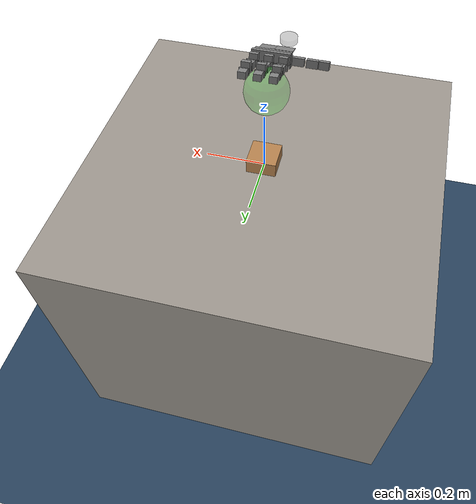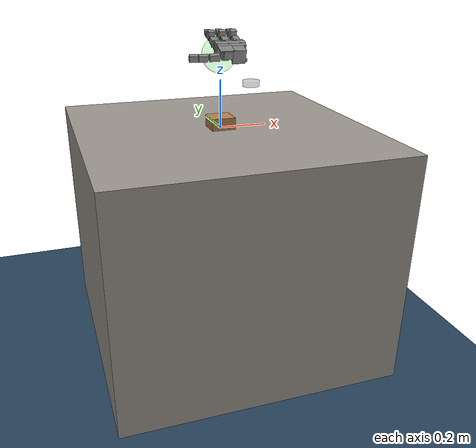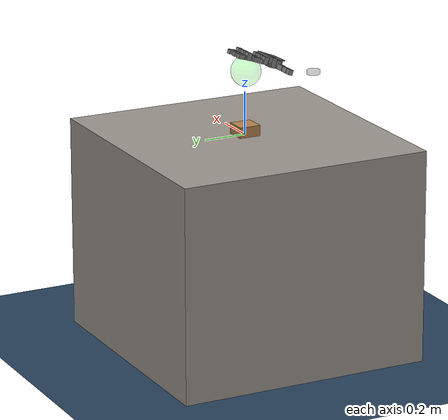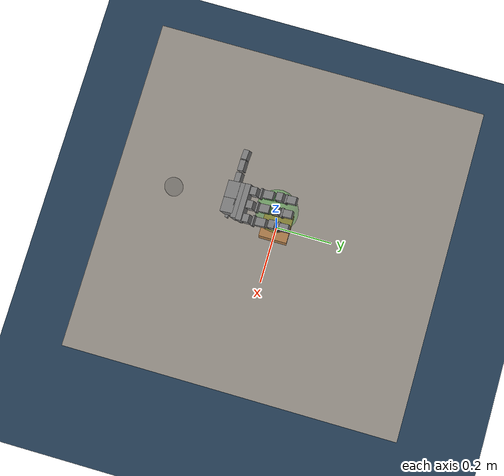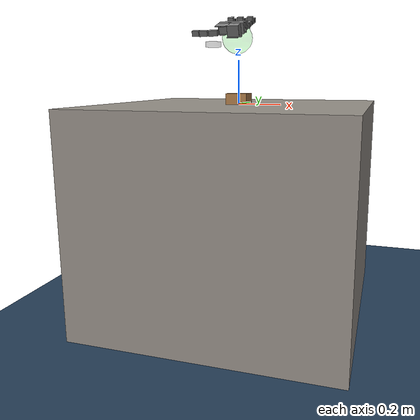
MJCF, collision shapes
<mujoco model='Relocate-Leap'>

    <!-- ======= COMPILER & OPTIONS ======= -->
    <compiler angle="radian" meshdir='.' />
    <option timestep="0.01" integrator="Euler" iterations="5" ls_iterations="8">
      <flag eulerdamp="enable"/>
    </option>

    <custom>
      <numeric data="30" name="max_contact_points"/>
      <numeric data="12" name="max_geom_pairs"/>
    </custom>

    <!-- Bring in Leap Hand assets/defaults and contacts -->
    <include file="leap_rh_assets_defaults.xml"/>

    <!-- ======= VISUAL SETTINGS ======= -->
    <visual>
        <global offwidth="3024" offheight="1680" />
        <quality shadowsize="4096" offsamples="8" />
        <map force="0.1" fogend="5" />
    </visual>

    <!-- ======= DEFAULTS ======= -->
    <default class="main">
        <mesh scale="0.001 0.001 0.001" />
        <joint limited="true" margin="0.01" armature="0.001" damping="0.05" frictionloss="0.001" />
        <geom friction="1 0.5 0.01" margin="0.0005" />
        <site size="0.005 0 0" rgba="0.4 0.9 0.4 1" />
        <tendon limited="true" />
        <general ctrllimited="true" ctrlrange="-1 1" user="0 1 0.03 0.0939711 0.513477 0.0358776 1.23598 8.40409 0.485031 6.04244 1.02187 0.175297 0.121642 0 0 0" />
    </default>

    <!-- ======= ASSETS ======= -->
    <asset>
        <!-- Textures -->
        <texture type="cube" name="texgeom" builtin="flat" mark="cross" rgb1="0.3 0.6 0.5" rgb2="0.3 0.6 0.5" width="127" height="762" />
        <texture type="cube" name="wood" file="resources/textures/wood.png" />
        <texture type="2d" name="wood2d" file="resources/textures/wood.png" />
        <texture type="cube" name="square" file="resources/textures/square.png" />
        <texture type="cube" name="foil" file="resources/textures/silverRaw.png" />
        <texture type="cube" name="woodb" file="resources/textures/woodb.png" />
        <texture type="2d" name="groundplane" builtin="checker" rgb1="0.2 0.3 0.4" rgb2="0.1 0.2 0.3" width="100" height="100" />
        <texture type="2d" name="marble2d" file="resources/textures/marble.png" />
        <texture type="cube" name="marblecube" file="resources/textures/marble.png" />

        <!-- Materials -->
        <material name="MatColl" specular="1" shininess="0.3" reflectance="0.5" rgba="0.4 0.5 0.6 1" />
        <material name="MatViz" specular="0.75" shininess="0.1" reflectance="0.5" rgba="0.9 0.7 0.5 1" />
        <material name="MatGnd" specular="0.3" shininess="0.3" reflectance="0.3" rgba="0.5 0.55 0.5 1" />
        <material name="object" texture="texgeom" />
        <material name="groundplane" texture="groundplane" texrepeat="10 10" />
        <material name="table2d" texture="marble2d" reflectance="0.3" rgba="0.8 0.8 0.8 1" />
        <material name="tablecube" texture="marblecube" rgba="0.8 0.8 0.8 1" />
        <material name="MatFoil" texture="foil" specular="1" shininess="0.3" rgba="0.9 0.9 0.9 1" />
        <material name="MatPlane" specular="0.3" shininess="0.3" rgba="0.3 0.3 0.2 1" />
        <material name="MatWood" texture="wood" texrepeat="3 3" specular="0.4" shininess="0.1" />
        <material name="MatSquare" texture="square" specular="1" shininess="0.6" rgba="0.8 0.8 0.8 1" />
        <material name="MatWoodR" texture="wood" specular="1" shininess="0.3" rgba="1 0.5 0.5 1" />
        <material name="MatWoodG" texture="wood" specular="1" shininess="0.3" rgba="0.2 1 0.2 1" />
        <material name="MatWoodB" texture="woodb" specular="1" shininess="0.3" />
    </asset>

    <!-- ======= WORLD ======= -->
    <worldbody>
        <!-- Lighting -->
        <light directional='false' diffuse='.7 .7 .7' specular='0.03 0.03 0.03' pos='-1 -1.0 4.0' dir='1 1.0 -4'/>

        <!-- Ground -->
        <geom name='ground' size="1.5 1.5 0.25" pos="0 0 -1" type="plane" contype="1" conaffinity="0" material="groundplane" />

        <!-- Cameras -->
        <camera name="fixed" pos="0 -0.7 0.7" quat="0.92388 0.382683 0 0" />
        <camera name="vil_camera" pos="0 -1.2 1.2" quat="0.92388 0.382683 0 0" />
        <camera name="hand_close" pos="0.1 -0.4 0.35" quat="0.92388 0.382683 0 0" />

        <!-- ======= TABLE ======= -->
        <body name="table">
            <geom size="0.6 0.6 0.5" pos="0 0 -0.5" type="box" material="tablecube" />
        </body>

        <!-- ======= MOCAP ======= -->
        <body name="vive_tracker" pos="0 -0.35 0.25" mocap="true">
            <inertial pos="0 0 0" mass="0.064" diaginertia="1.70667e-05 1.70667e-05 1.70667e-05" />
            <geom size="0.03 0.01" type="cylinder" contype="0" conaffinity="0" group="3" rgba="0.3 0.3 0.3 0.3" />
        </body>

        <!-- ======= LEAP HAND BASE (floating) ======= -->
        <body name="hand_base" pos="0 -0.2 0.3" euler="3.14 0 -1.57">
            <joint name="H_Tx" pos="0 0 0" axis="1 0 0" type="slide" range="-0.6 0.6" damping="50" armature="0.1"/>
            <joint name="H_Ty" pos="0 0 0" axis="0 1 0" type="slide" range="-0.6 0.6" damping="50" armature="0.1"/>
            <joint name="H_Tz" pos="0 0 0" axis="0 0 1" type="slide" range="-0.3 0.4" damping="50" armature="0.1"/>
            <joint name="H_Rx" pos="0 0 0" axis="1 0 0" range="-1.57 1.57" damping="50" armature="0.1"/>
            <joint name="H_Ry" pos="0 0 0" axis="0 1 0" range="-1.57 1.57" damping="50" armature="0.1"/>
            <joint name="H_Rz" pos="0 0 0" axis="0 0 1" range="-1.57 1.57" damping="50" armature="0.1"/>
            <!-- include the hand kinematic subtree -->
            <include file="leap_rh_body_include.xml"/>
        </body>

        <!-- ======= DESTINATION ======= -->
        <site name="target" pos="-0.007 0.0 0.3" size="0.07" rgba="0 1 0 0.125" />

        <!-- ======= OBJECT ======= -->
        <body name="Object" pos="-0.00 0.0 0.00" user="1001 0 2003 27 0 0 0.06 0 0">
            <inertial pos="0 0 0" mass="0.5" diaginertia="0.001 0.001 0.001" />
            <freejoint/>
            <geom name="object" type="box" size="0.05 0.05 0.05" condim="6" material="MatWoodB" friction="0.7 0.3 0.01" solref="0.02 1" solimp="0.9 0.95 0.001"/>
        </body>
    </worldbody>

    <!-- Bring in Leap Hand actuators -->
    <include file="leap_rh_actuators_include_relocate.xml"/>

</mujoco>

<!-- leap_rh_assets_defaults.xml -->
<mujocoinclude>
  <asset>
    <material name="black" rgba="0.2 0.2 0.2 1"/>
    <material name="gray" rgba="0.5 0.5 0.5 1"/>
    <mesh name="leap_mount" file="meshes/leap_mount.obj" scale="1 1 1"/>
    <!-- Files are resolved relative to meshdir set by the scene -->
    <mesh name="palm" file="../../../../external_deps/mujoco_menagerie/leap_hand/assets/palm_right.obj" scale="1 1 1"/>
    <mesh name="base" file="../../../../external_deps/mujoco_menagerie/leap_hand/assets/base.obj" scale="1 1 1"/>
    <mesh name="proximal" file="../../../../external_deps/mujoco_menagerie/leap_hand/assets/proximal.obj" scale="1 1 1"/>
    <mesh name="medial" file="../../../../external_deps/mujoco_menagerie/leap_hand/assets/medial.obj" scale="1 1 1"/>
    <mesh name="distal" file="../../../../external_deps/mujoco_menagerie/leap_hand/assets/distal.obj" scale="1 1 1"/>
    <mesh name="tip" file="../../../../external_deps/mujoco_menagerie/leap_hand/assets/tip.obj" scale="1 1 1"/>
    <mesh name="thumb_base" file="../../../../external_deps/mujoco_menagerie/leap_hand/assets/thumb_base.obj" scale="1 1 1"/>
    <mesh name="thumb_proximal" file="../../../../external_deps/mujoco_menagerie/leap_hand/assets/thumb_proximal.obj" scale="1 1 1"/>
    <mesh name="thumb_distal" file="../../../../external_deps/mujoco_menagerie/leap_hand/assets/thumb_distal.obj" scale="1 1 1"/>
    <mesh name="thumb_tip" file="../../../../external_deps/mujoco_menagerie/leap_hand/assets/thumb_tip.obj" scale="1 1 1"/>
  </asset>

  <default>
    <default class="leap_rh">
      <geom group="3" friction="0.2" solref="0.02 1.5" solimp="0.9 0.99 0.001"/>
      <default class="visual">
        <geom group="0" type="mesh" contype="0" conaffinity="0" density="0" material="black"/>
      </default>
      <default class="tip">
        <geom size="0.01 0.012 0.016" pos="-0.0012969 -0.0335524 0.0145207" quat="0.703552 0.709596 -0.0292107 -0.0252203" type="box" friction="0.7 0.05 0.0002" rgba=".5 .5 .5 .3"/>
      </default>
      <default class="thumb_tip">
        <geom size="0.01 0.012 0.016" pos="-0.00127744 -0.0455619 -0.0144774" quat="0.708101 0.705072 -0.0294902 -0.024426" type="box" friction="0.7 0.05 0.0002" rgba=".5 .5 .5 .3"/>
      </default>
      <position kp="3.0" inheritrange="1"/>
      <joint axis="0 0 -1" damping="0.2" armature="0.00149376" actuatorfrcrange="-0.2196 0.2196" frictionloss="0.02"/>
      <default class="mcp">
        <joint range="-0.314 2.23"/>
      </default>
      <default class="rot">
        <joint range="-1.047 1.047"/>
      </default>
      <default class="pip">
        <joint range="-0.506 1.885"/>
      </default>
      <default class="dip">
        <joint range="-0.366 2.042"/>
      </default>
      <default class="thumb_cmc">
        <joint range="-0.349 2.094"/>
      </default>
      <default class="thumb_axl">
        <joint range="-0.349 2.094"/>
      </default>
      <default class="thumb_mcp">
        <joint range="-0.47 2.443"/>
      </default>
      <default class="thumb_ipl">
        <joint range="-1.34 1.88"/>
      </default>
    </default>
  </default>

  <contact>
    <!-- filter the palm from all other finger bodies except the tips -->
    <exclude body1="palm" body2="if_bs"/>
    <exclude body1="palm" body2="mf_bs"/>
    <exclude body1="palm" body2="rf_bs"/>
    <exclude body1="palm" body2="th_mp"/>

    <exclude body1="palm" body2="if_px"/>
    <exclude body1="palm" body2="mf_px"/>
    <exclude body1="palm" body2="rf_px"/>
    <exclude body1="palm" body2="th_bs"/>

    <exclude body1="palm" body2="if_md"/>
    <exclude body1="palm" body2="mf_md"/>
    <exclude body1="palm" body2="rf_md"/>
    <exclude body1="palm" body2="th_px"/>

    <!-- filter the mount from all finger bodies except the tips -->
    <exclude body1="leap_mount" body2="if_bs"/>
    <exclude body1="leap_mount" body2="mf_bs"/>
    <exclude body1="leap_mount" body2="rf_bs"/>
    <exclude body1="leap_mount" body2="th_mp"/>

    <exclude body1="leap_mount" body2="if_px"/>
    <exclude body1="leap_mount" body2="mf_px"/>
    <exclude body1="leap_mount" body2="rf_px"/>
    <exclude body1="leap_mount" body2="th_bs"/>

    <exclude body1="leap_mount" body2="if_md"/>
    <exclude body1="leap_mount" body2="mf_md"/>
    <exclude body1="leap_mount" body2="rf_md"/>
    <exclude body1="leap_mount" body2="th_px"/>

    <!-- none of the base fingertip geoms can touch each other -->
    <exclude body1="if_bs" body2="mf_bs"/>
    <exclude body1="if_bs" body2="rf_bs"/>
    <exclude body1="mf_bs" body2="rf_bs"/>

    <exclude body1="th_mp" body2="if_bs"/>
    <exclude body1="th_mp" body2="mf_bs"/>
    <exclude body1="th_mp" body2="rf_bs"/>
  </contact>
</mujocoinclude>

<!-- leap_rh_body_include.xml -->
<mujocoinclude>
  <body name="leap_mount" pos="0 0 0" quat="1 0 0 0" childclass="leap_rh">
    <geom name="leap_mount_visual" pos="0 0 0" quat="1 0 0 0" class="visual" mesh="leap_mount"/>
    <geom name="leap_mount_collision_0" size="0.002 0.025 0.005" pos="0.0405 0.02 0.009" quat="0.57346234 0 0.81923192 0" type="box"/>
    <geom name="leap_mount_collision_1" size="0.005 0.005 0.005" pos="0.05 0.053 0.002" quat="0.4987168 0.64994038 -0.34910175 0.45495826" type="box"/>
    <site name="grasp_site" pos="0.11 0.0 0.03" group="4"/>
    <site name="palm_site" pos="0.11 0.0 0.0" group="4"/>
    <body name="palm" pos="0.124 -0.0305 -0.06045" quat="0 1 0 -0.175">
      <inertial pos="-0.049542 -0.042914 -0.010227" quat="0.565586 0.427629 -0.574956 0.408254" mass="0.237" diaginertia="0.000407345 0.000304759 0.000180736"/>
      <geom name="palm_visual" pos="-0.02 0.02575 -0.0347" quat="1 0 0 0" class="visual" mesh="palm"/>
      <geom name="palm_collision_1" size="0.011 0.013 0.017" pos="-0.009 0.008 -0.011" type="box"/>
      <geom name="palm_collision_2" size="0.011 0.013 0.017" pos="-0.009 -0.037 -0.011" type="box"/>
      <geom name="palm_collision_3" size="0.011 0.013 0.017" pos="-0.009 -0.082 -0.011" type="box"/>
      <geom name="palm_collision_4" size="0.012 0.058 0.023" pos="-0.048 -0.033 -0.0115" type="box"/>
      <geom name="palm_collision_5" size="0.01 0.06 0.015" pos="-0.03 -0.035 -0.003" type="box"/>
      <geom name="palm_collision_6" size="0.005 0.06 0.01" pos="-0.032 -0.035 -0.024" quat="0.923956 0 0.382499 0" type="box"/>
      <geom name="palm_collision_7" size="0.012 0.058 0.023" pos="-0.048 -0.033 -0.0115" type="box"/>
      <geom name="palm_collision_8" size="0.022 0.026 0.023" pos="-0.078 -0.053 -0.0115" type="box"/>
      <geom name="palm_collision_9" size="0.002 0.018 0.017" pos="-0.098 -0.009 -0.006" type="box"/>
      <geom name="palm_collision_10" size="0.022 0.028 0.002" pos="-0.078 -0.003 0.01" type="box"/>
      <!-- Index finger -->
      <body name="if_bs" pos="-0.007 0.023 -0.0187" quat="0.5 0.5 0.5 -0.5">
        <inertial pos="-0.022516 0.033882 0.016359" quat="0.388092 0.677951 -0.247713 0.573067" mass="0.044" diaginertia="1.74972e-05 1.61504e-05 7.21342e-06"/>
        <joint name="if_mcp" class="mcp"/>
        <geom name="if_bs_visual" pos="0.0084 0.0077 0.01465" quat="1 0 0 0" class="visual" mesh="base"/>
        <geom name="if_bs_collision_1" size="0.01 0.003 0.017" pos="0 0.018 0.0147" type="box"/>
        <body name="if_px" pos="-0.0122 0.0381 0.0145" quat="0.500003 -0.5 -0.499997 0.5">
          <inertial pos="0.0075 -0.0002 -0.011" quat="0 0.707107 0 0.707107" mass="0.032" diaginertia="4.8853e-06 4.3733e-06 3.0933e-06"/>
          <joint name="if_rot" class="rot"/>
          <geom name="if_px_visual" pos="0.0096 0.0002 0.0007" quat="0.500003 -0.5 -0.5 -0.499997" class="visual" mesh="proximal"/>
          <geom name="if_px_collision" size="0.017 0.013 0.011" pos="0.0075 -0.0002 -0.011" type="box"/>
          <body name="if_md" pos="0.015 0.0143 -0.013" quat="0.500003 0.5 -0.5 0.499997">
            <inertial pos="0.0054215 -0.029148 0.015" quat="0.687228 0.687228 0.166487 0.166487" mass="0.037" diaginertia="8.28004e-06 8.1598e-06 5.39516e-06"/>
            <joint name="if_pip" class="pip"/>
            <geom name="if_md_visual" pos="0.0211 -0.0084 0.0097" quat="2.67949e-08 -1 0 0" class="visual" mesh="medial"/>
            <geom name="if_md_collision_1" size="0.008 0.003 0.013" pos="0 -0.02 0.015" type="box"/>
            <geom name="if_md_collision_5" size="0.017 0.011 0.013" pos="0.0075 -0.035 0.015" type="box"/>
            <body name="if_ds" pos="0 -0.0361 0.0002">
              <inertial pos="-0.0008794 -0.027019 0.014594" quat="0.702905 0.710643 -0.0212937 -0.0214203" mass="0.016" diaginertia="3.71863e-06 3.02396e-06 1.6518e-06"/>
              <joint name="if_dip" class="dip"/>
              <geom name="if_ds_visual" pos="0.0132 -0.0061 0.0144" quat="2.67949e-08 1 0 0" class="visual" mesh="distal"/>
              <geom name="if_ds_collision_1" size="0.01 0.003 0.015" pos="0 -0.017 0.015" type="box"/>
              <geom name="if_tip" class="tip"/>
              <geom type="mesh" mesh="tip" class="visual" material="gray"/>
              <site name="if_tip" pos="0 -0.05 0.015" group="4"/>
            </body>
          </body>
        </body>
      </body>
      <!-- Middle finger -->
      <body name="mf_bs" pos="-0.0071 -0.0224 -0.0187" quat="0.500003 0.5 0.5 -0.499997">
        <inertial pos="-0.022516 0.033882 0.016359" quat="0.388092 0.677951 -0.247713 0.573067" mass="0.044" diaginertia="1.74972e-05 1.61504e-05 7.21342e-06"/>
        <joint name="mf_mcp" class="mcp"/>
        <geom name="mf_bs_visual" pos="0.0084 0.0077 0.01465" quat="1 0 0 0" class="visual" mesh="base"/>
        <geom name="mf_bs_collision_1" size="0.01 0.003 0.017" pos="0 0.018 0.0147" type="box"/>
        <body name="mf_px" pos="-0.0122 0.0381 0.0145" quat="0.500003 -0.5 -0.499997 0.5">
          <inertial pos="0.0075 -0.0002 -0.011" quat="0 0.707107 0 0.707107" mass="0.032" diaginertia="4.8853e-06 4.3733e-06 3.0933e-06"/>
          <joint name="mf_rot" class="rot"/>
          <geom name="mf_px_visual" pos="0.0096 0.0003 0.0007" quat="0.500003 -0.5 -0.5 -0.499997" class="visual" mesh="proximal"/>
          <geom name="mf_px_collision" size="0.017 0.013 0.011" pos="0.0075 -0.0002 -0.011" type="box"/>
          <body name="mf_md" pos="0.015 0.0143 -0.013" quat="0.500003 0.5 -0.5 0.499997">
            <inertial pos="0.0054215 -0.029148 0.015" quat="0.687228 0.687228 0.166487 0.166487" mass="0.037" diaginertia="8.28004e-06 8.1598e-06 5.39516e-06"/>
            <joint name="mf_pip" class="pip"/>
            <geom name="mf_md_visual" pos="0.0211 -0.0084 0.0097" quat="1.32679e-06 -1 0 0" class="visual" mesh="medial"/>
            <geom name="mf_md_collision_1" size="0.008 0.003 0.013" pos="0 -0.02 0.015" type="box"/>
            <geom name="mf_md_collision_5" size="0.017 0.011 0.013" pos="0.0075 -0.035 0.015" type="box"/>
            <body name="mf_ds" pos="0 -0.0361 0.0002">
              <inertial pos="-0.0008794 -0.027019 0.014594" quat="0.702905 0.710643 -0.0212937 -0.0214203" mass="0.016" diaginertia="3.71863e-06 3.02396e-06 1.6518e-06"/>
              <joint name="mf_dip" class="dip"/>
              <geom name="mf_ds_visual" pos="0.0132 -0.0061 0.0145" quat="1.32679e-06 1 0 0" class="visual" mesh="distal"/>
              <geom name="mf_ds_collision_1" size="0.01 0.003 0.015" pos="0 -0.017 0.015" type="box"/>
              <geom name="mf_tip" class="tip"/>
              <geom type="mesh" mesh="tip" class="visual" material="gray"/>
              <site name="mf_tip" pos="0 -0.05 0.015" group="4"/>
            </body>
          </body>
        </body>
      </body>
      <!-- Ring finger -->
      <body name="rf_bs" pos="-0.00709 -0.0678 -0.0187" quat="0.500003 0.5 0.5 -0.499997">
        <inertial pos="-0.022516 0.033882 0.016359" quat="0.388092 0.677951 -0.247713 0.573067" mass="0.044" diaginertia="1.74972e-05 1.61504e-05 7.21342e-06"/>
        <joint name="rf_mcp" class="mcp"/>
        <geom name="rf_bs_visual" pos="0.0084 0.0077 0.01465" quat="1 0 0 0" class="visual" mesh="base"/>
        <geom name="rf_bs_collision_1" size="0.01 0.003 0.017" pos="0 0.018 0.0147" type="box"/>
        <body name="rf_px" pos="-0.0122 0.0381 0.0145" quat="0.500003 -0.5 -0.499997 0.5">
          <inertial pos="0.0075 -0.0002 -0.011" quat="0 0.707107 0 0.707107" mass="0.032" diaginertia="4.8853e-06 4.3733e-06 3.0933e-06"/>
          <joint name="rf_rot" class="rot"/>
          <geom name="rf_px_visual" pos="0.0096 0.0003 0.0007" quat="0.500003 -0.5 -0.5 -0.499997" class="visual" mesh="proximal"/>
          <geom name="rf_px_collision" size="0.017 0.013 0.011" pos="0.0075 -0.0002 -0.011" type="box"/>
          <body name="rf_md" pos="0.015 0.0143 -0.013" quat="0.500003 0.5 -0.5 0.499997">
            <inertial pos="0.0054215 -0.029148 0.015" quat="0.687228 0.687228 0.166487 0.166487" mass="0.037" diaginertia="8.28004e-06 8.1598e-06 5.39516e-06"/>
            <joint name="rf_pip" class="pip"/>
            <geom name="rf_md_visual" pos="0.0211 -0.0084 0.0097" quat="0 -1 0 0" class="visual" mesh="medial"/>
            <geom name="rf_md_collision_1" size="0.008 0.003 0.013" pos="0 -0.02 0.015" type="box"/>
            <geom name="rf_md_collision_5" size="0.017 0.011 0.013" pos="0.0075 -0.035 0.015" type="box"/>
            <body name="rf_ds" pos="0 -0.03609 0.0002">
              <inertial pos="-0.0008794 -0.027019 0.014594" quat="0.702905 0.710643 -0.0212937 -0.0214203" mass="0.016" diaginertia="3.71863e-06 3.02396e-06 1.6518e-06"/>
              <joint name="rf_dip" class="dip"/>
              <geom name="rf_ds_visual" pos="0.0132 -0.0061 0.0145" quat="0 1 0 0" class="visual" mesh="distal"/>
              <geom name="rf_ds_collision_1" size="0.01 0.003 0.015" pos="0 -0.017 0.015" type="box"/>
              <geom name="rf_tip" class="tip"/>
              <geom type="mesh" mesh="tip" class="visual" material="gray"/>
              <site name="rf_tip" pos="0 -0.05 0.015" group="4"/>
            </body>
          </body>
        </body>
      </body>
      <!-- Thumb -->
      <body name="th_mp" pos="-0.0693 -0.0012 -0.0216" quat="0.707109 0 0.707105 0">
        <inertial pos="0.0075 -0.0002 -0.011" quat="0 0.707107 0 0.707107" mass="0.032" diaginertia="4.8853e-06 4.3733e-06 3.0933e-06"/>
        <joint name="th_cmc" class="thumb_cmc"/>
        <geom name="th_mp_visual" pos="-0.0053 0.0003 0.00078" quat="0.500003 -0.5 -0.5 -0.499997" class="visual" mesh="proximal"/>
        <geom name="th_mp_collision" size="0.017 0.013 0.011" pos="-0.0075 -0.0002 -0.011" type="box"/>
        <body name="th_bs" pos="0 0.0143 -0.013" quat="0.500003 0.5 -0.5 0.499997">
          <inertial pos="0 0 -0.0070806" quat="0.707107 0.707107 0 0" mass="0.003" diaginertia="6.1932e-07 5.351e-07 2.1516e-07"/>
          <joint name="th_axl" class="thumb_axl"/>
          <geom name="th_bs_collision_1" pos="0.01196 0 -0.0158" quat="0.707109 0.707105 0 0" class="visual" mesh="thumb_base"/>
          <body name="th_px" pos="0 0.0145 -0.017" quat="0.707109 -0.707105 0 0">
            <inertial pos="-0.0020593 0.015912 -0.013733" quat="0.698518 0.697382 -0.104933 0.121324" mass="0.038" diaginertia="9.87104e-06 9.32653e-06 4.36203e-06"/>
            <joint name="th_mcp" class="thumb_mcp"/>
            <geom name="th_px_visual" pos="0.0439 0.0579 -0.0086" quat="1 0 0 0" class="visual" mesh="thumb_proximal"/>
            <geom name="th_px_collision_1" size="0.01 0.02 0.012" pos="0 0.0105 -0.014" type="box"/>
            <body name="th_ds" pos="0 0.0466 0.0002" quat="1.32679e-06 0 0 1">
              <inertial pos="0.00096191 -0.024203 -0.014419" quat="0.35287 0.311272 -0.632839 0.614904" mass="0.049" diaginertia="2.08591e-05 2.0402e-05 4.71335e-06"/>
              <joint name="th_ipl" class="thumb_ipl"/>
              <geom name="th_ds_visual" pos="0.0625 0.0784 0.0489" quat="1 0 0 0" class="visual" mesh="thumb_distal"/>
              <geom name="th_ds_collision_1" size="0.01 0.018 0.012" pos="0 -0.0085 -0.015" type="box"/>
              <geom name="th_tip" class="thumb_tip"/>
              <site name="th_tip" pos="0 -0.06 -0.015" group="4"/>
              <geom type="mesh" mesh="thumb_tip" class="visual" material="gray"/>
            </body>
          </body>
        </body>
      </body>
    </body>
  </body>
</mujocoinclude>

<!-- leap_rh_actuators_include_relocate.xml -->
<mujocoinclude>
  <actuator>
    <!-- Base motion actuators with balanced gains and bias for realistic motion -->
    <general name="A_H_Tx" joint="H_Tx" ctrlrange="-0.6 0.6" biastype="affine" gainprm="75 0 0" biasprm="0 -100 0" />
    <general name="A_H_Ty" joint="H_Ty" ctrlrange="-0.6 0.6" biastype="affine" gainprm="75 0 0" biasprm="0 -100 0" />
    <general name="A_H_Tz" joint="H_Tz" ctrlrange="-0.3 0.4" biastype="affine" gainprm="75 0 0" biasprm="0 -100 0" />
    <general name="A_H_Rx" joint="H_Rx" ctrlrange="-1.57 1.57" biastype="affine" gainprm="75 0 0" biasprm="0 -100 0" />
    <general name="A_H_Ry" joint="H_Ry" ctrlrange="-1.57 1.57" biastype="affine" gainprm="75 0 0" biasprm="0 -100 0" />
    <general name="A_H_Rz" joint="H_Rz" ctrlrange="-1.57 1.57" biastype="affine" gainprm="75 0 0" biasprm="0 -100 0" />

    <position name="if_mcp_act" joint="if_mcp" class="mcp"/>
    <position name="if_rot_act" joint="if_rot" class="rot"/>
    <position name="if_pip_act" joint="if_pip" class="pip"/>
    <position name="if_dip_act" joint="if_dip" class="dip"/>

    <position name="mf_mcp_act" joint="mf_mcp" class="mcp"/>
    <position name="mf_rot_act" joint="mf_rot" class="rot"/>
    <position name="mf_pip_act" joint="mf_pip" class="pip"/>
    <position name="mf_dip_act" joint="mf_dip" class="dip"/>

    <position name="rf_mcp_act" joint="rf_mcp" class="mcp"/>
    <position name="rf_rot_act" joint="rf_rot" class="rot"/>
    <position name="rf_pip_act" joint="rf_pip" class="pip"/>
    <position name="rf_dip_act" joint="rf_dip" class="dip"/>

    <position name="th_cmc_act" joint="th_cmc" class="thumb_cmc"/>
    <position name="th_axl_act" joint="th_axl" class="thumb_axl"/>
    <position name="th_mcp_act" joint="th_mcp" class="thumb_mcp"/>
    <position name="th_ipl_act" joint="th_ipl" class="thumb_ipl"/>
  </actuator>
  <sensor>
    <!-- hand. -->
    <framepos name="palm_position" objtype="site" objname="grasp_site"/>
    <framepos name="th_tip_position" objtype="site" objname="th_tip" reftype="site" refname="grasp_site"/>
    <framepos name="if_tip_position" objtype="site" objname="if_tip" reftype="site" refname="grasp_site"/>
    <framepos name="mf_tip_position" objtype="site" objname="mf_tip" reftype="site" refname="grasp_site"/>
    <framepos name="rf_tip_position" objtype="site" objname="rf_tip" reftype="site" refname="grasp_site"/>

    <framepos name="object_position" objtype="body" objname="Object"/>
    <framequat name="object_orientation" objtype="body" objname="Object"/>
    <framelinvel name="object_linvel" objtype="body" objname="Object"/>
    <frameangvel name="object_angvel" objtype="body" objname="Object"/>
    <frameangacc name="object_angacc" objtype="body" objname="Object"/>
    <framezaxis name="object_upvector" objtype="body" objname="Object"/>
  </sensor>
</mujocoinclude>
